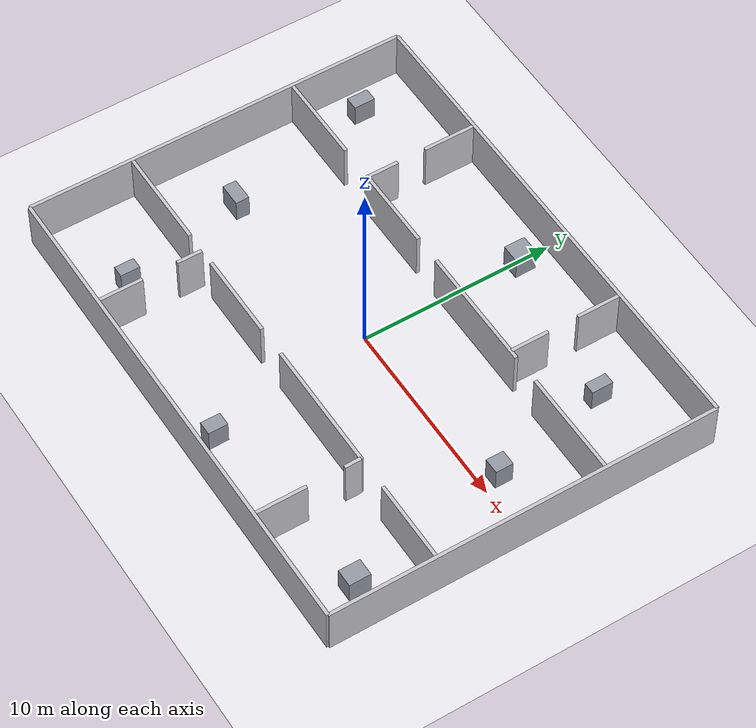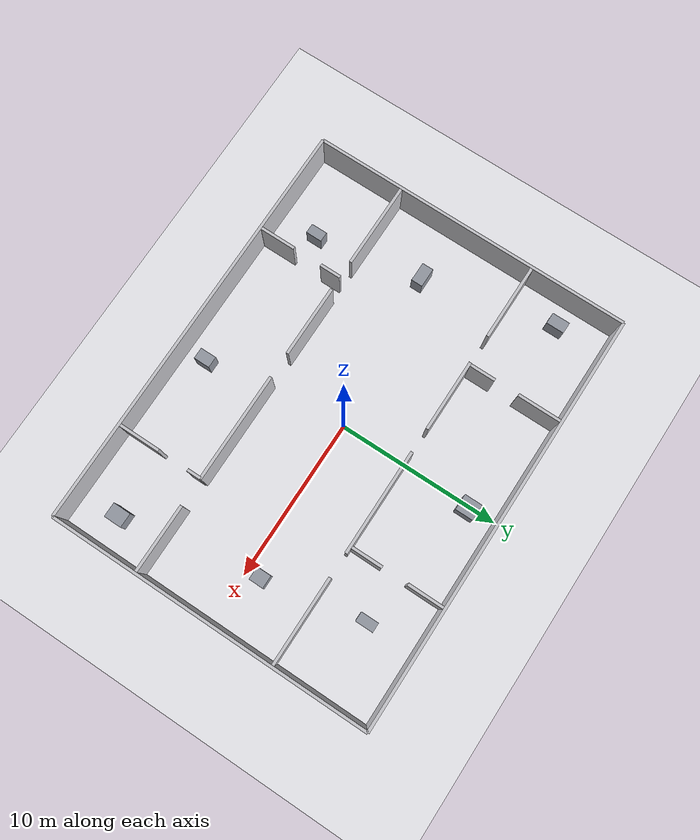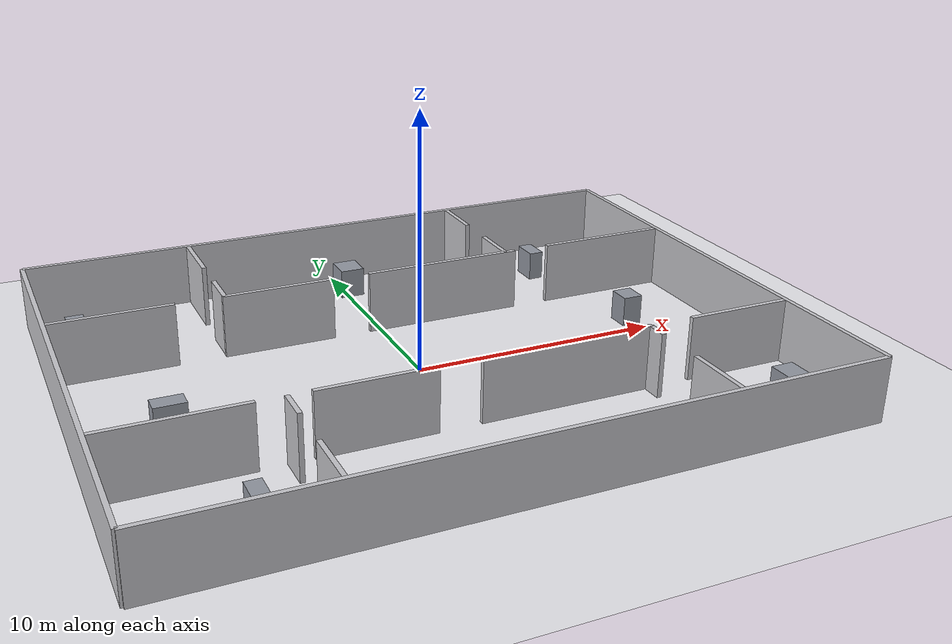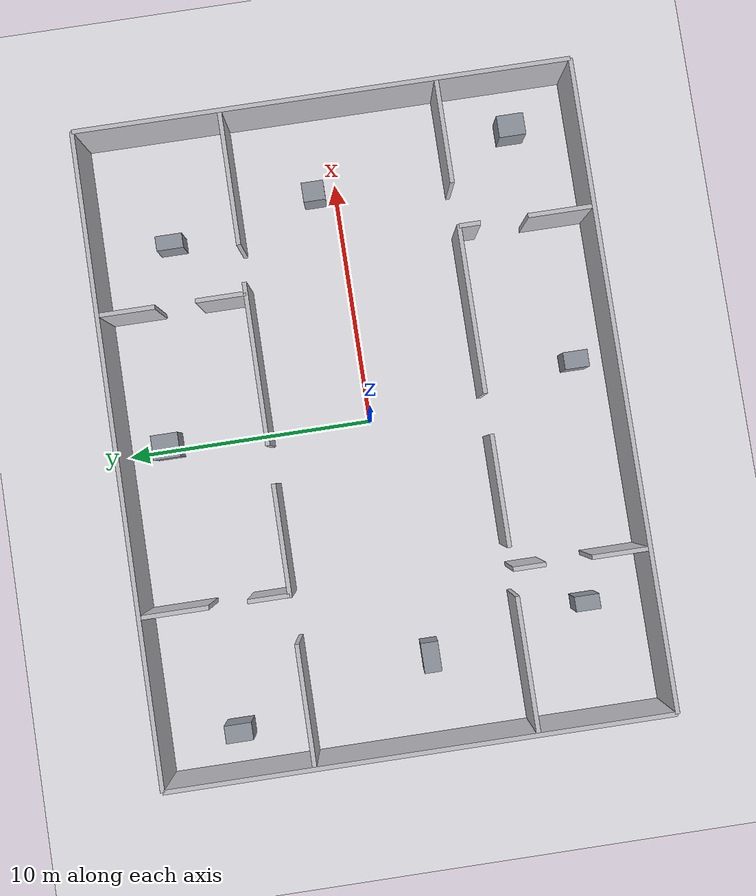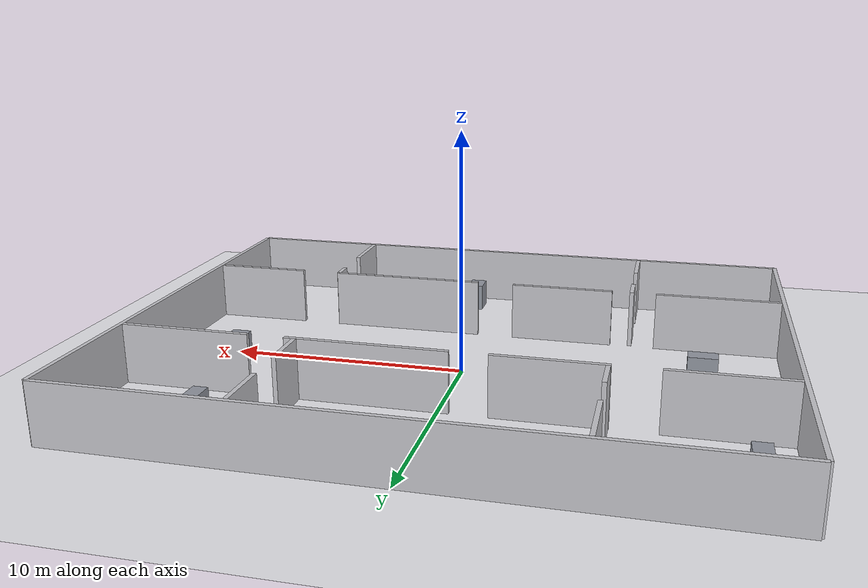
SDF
<?xml version="1.0"?>
<sdf version="1.9"><world name="new_room_world">
<plugin filename="gz-sim-physics-system" name="gz::sim::systems::Physics"/><plugin filename="gz-sim-user-commands-system" name="gz::sim::systems::UserCommands"/><plugin filename="gz-sim-scene-broadcaster-system" name="gz::sim::systems::SceneBroadcaster"/><plugin filename="gz-sim-sensors-system" name="gz::sim::systems::Sensors"><render_engine>ogre2</render_engine></plugin><plugin filename="gz-sim-imu-system" name="gz::sim::systems::Imu"/>
<physics name="new_room_realtime" type="ignored"><max_step_size>0.001</max_step_size><real_time_factor>1</real_time_factor></physics><gravity>0 0 -9.8</gravity><scene><ambient>0.85 0.85 0.87 1</ambient><background>0.68 0.68 0.71 1</background><shadows>false</shadows></scene><light name="sun" type="directional"><cast_shadows>false</cast_shadows><pose>0 0 10 0 0 0</pose><diffuse>0.95 0.95 0.95 1</diffuse><direction>-0.3 0.2 -1</direction></light>
<model name="new_room_ground"><static>true</static><link name="ground_link"><collision name="ground_collision"><geometry><plane><normal>0 0 1</normal><size>40 32</size></plane></geometry></collision><visual name="ground_visual"><geometry><plane><normal>0 0 1</normal><size>40 32</size></plane></geometry><material><ambient>0.92 0.92 0.94 1</ambient><diffuse>0.92 0.92 0.94 1</diffuse></material></visual></link></model>
<model name="mini_hospital_structure"><static>true</static><link name="structure">
<collision name="mx048_c000"><pose>0 10 1.25 0 0 0</pose><geometry><box><size>26 0.18 2.5</size></box></geometry></collision><visual name="mx048_v000"><pose>0 10 1.25 0 0 0</pose><geometry><box><size>26 0.18 2.5</size></box></geometry><material><ambient>0.78 0.78 0.80 1</ambient><diffuse>0.78 0.78 0.80 1</diffuse></material></visual>
<collision name="mx048_c001"><pose>0 -10 1.25 0 0 0</pose><geometry><box><size>26 0.18 2.5</size></box></geometry></collision><visual name="mx048_v001"><pose>0 -10 1.25 0 0 0</pose><geometry><box><size>26 0.18 2.5</size></box></geometry><material><ambient>0.78 0.78 0.80 1</ambient><diffuse>0.78 0.78 0.80 1</diffuse></material></visual>
<collision name="mx048_c002"><pose>-13 0 1.25 0 0 0</pose><geometry><box><size>0.18 20 2.5</size></box></geometry></collision><visual name="mx048_v002"><pose>-13 0 1.25 0 0 0</pose><geometry><box><size>0.18 20 2.5</size></box></geometry><material><ambient>0.78 0.78 0.80 1</ambient><diffuse>0.78 0.78 0.80 1</diffuse></material></visual>
<collision name="mx048_c003"><pose>13 0 1.25 0 0 0</pose><geometry><box><size>0.18 20 2.5</size></box></geometry></collision><visual name="mx048_v003"><pose>13 0 1.25 0 0 0</pose><geometry><box><size>0.18 20 2.5</size></box></geometry><material><ambient>0.78 0.78 0.80 1</ambient><diffuse>0.78 0.78 0.80 1</diffuse></material></visual>
<collision name="mx048_c004"><pose>-10.555 4.1 1.25 0 0 0</pose><geometry><box><size>4.71 0.18 2.5</size></box></geometry></collision><visual name="mx048_v004"><pose>-10.555 4.1 1.25 0 0 0</pose><geometry><box><size>4.71 0.18 2.5</size></box></geometry><material><ambient>0.78 0.78 0.80 1</ambient><diffuse>0.78 0.78 0.80 1</diffuse></material></visual>
<collision name="mx048_c005"><pose>-4.175 4.1 1.25 0 0 0</pose><geometry><box><size>4.45 0.18 2.5</size></box></geometry></collision><visual name="mx048_v005"><pose>-4.175 4.1 1.25 0 0 0</pose><geometry><box><size>4.45 0.18 2.5</size></box></geometry><material><ambient>0.78 0.78 0.80 1</ambient><diffuse>0.78 0.78 0.80 1</diffuse></material></visual>
<collision name="mx048_c006"><pose>2.8 4.1 1.25 0 0 0</pose><geometry><box><size>6.5 0.18 2.5</size></box></geometry></collision><visual name="mx048_v006"><pose>2.8 4.1 1.25 0 0 0</pose><geometry><box><size>6.5 0.18 2.5</size></box></geometry><material><ambient>0.78 0.78 0.80 1</ambient><diffuse>0.78 0.78 0.80 1</diffuse></material></visual>
<collision name="mx048_c007"><pose>10.23 4.1 1.25 0 0 0</pose><geometry><box><size>5.36 0.18 2.5</size></box></geometry></collision><visual name="mx048_v007"><pose>10.23 4.1 1.25 0 0 0</pose><geometry><box><size>5.36 0.18 2.5</size></box></geometry><material><ambient>0.78 0.78 0.80 1</ambient><diffuse>0.78 0.78 0.80 1</diffuse></material></visual>
<collision name="mx048_c008"><pose>-10.28 -4.6 1.25 0 0 0</pose><geometry><box><size>5.26 0.18 2.5</size></box></geometry></collision><visual name="mx048_v008"><pose>-10.28 -4.6 1.25 0 0 0</pose><geometry><box><size>5.26 0.18 2.5</size></box></geometry><material><ambient>0.78 0.78 0.80 1</ambient><diffuse>0.78 0.78 0.80 1</diffuse></material></visual>
<collision name="mx048_c009"><pose>-3.525 -4.6 1.25 0 0 0</pose><geometry><box><size>4.45 0.18 2.5</size></box></geometry></collision><visual name="mx048_v009"><pose>-3.525 -4.6 1.25 0 0 0</pose><geometry><box><size>4.45 0.18 2.5</size></box></geometry><material><ambient>0.78 0.78 0.80 1</ambient><diffuse>0.78 0.78 0.80 1</diffuse></material></visual>
<collision name="mx048_c010"><pose>3.675 -4.6 1.25 0 0 0</pose><geometry><box><size>6.75 0.18 2.5</size></box></geometry></collision><visual name="mx048_v010"><pose>3.675 -4.6 1.25 0 0 0</pose><geometry><box><size>6.75 0.18 2.5</size></box></geometry><material><ambient>0.78 0.78 0.80 1</ambient><diffuse>0.78 0.78 0.80 1</diffuse></material></visual>
<collision name="mx048_c011"><pose>10.83 -4.6 1.25 0 0 0</pose><geometry><box><size>4.16 0.18 2.5</size></box></geometry></collision><visual name="mx048_v011"><pose>10.83 -4.6 1.25 0 0 0</pose><geometry><box><size>4.16 0.18 2.5</size></box></geometry><material><ambient>0.78 0.78 0.80 1</ambient><diffuse>0.78 0.78 0.80 1</diffuse></material></visual>
<collision name="mx048_c012"><pose>-6.3 4.925 1.25 0 0 0</pose><geometry><box><size>0.18 1.65 2.5</size></box></geometry></collision><visual name="mx048_v012"><pose>-6.3 4.925 1.25 0 0 0</pose><geometry><box><size>0.18 1.65 2.5</size></box></geometry><material><ambient>0.78 0.78 0.80 1</ambient><diffuse>0.78 0.78 0.80 1</diffuse></material></visual>
<collision name="mx048_c013"><pose>-6.3 8.58 1.25 0 0 0</pose><geometry><box><size>0.18 2.66 2.5</size></box></geometry></collision><visual name="mx048_v013"><pose>-6.3 8.58 1.25 0 0 0</pose><geometry><box><size>0.18 2.66 2.5</size></box></geometry><material><ambient>0.78 0.78 0.80 1</ambient><diffuse>0.78 0.78 0.80 1</diffuse></material></visual>
<collision name="mx048_c014"><pose>5.6 5.1 1.25 0 0 0</pose><geometry><box><size>0.18 2 2.5</size></box></geometry></collision><visual name="mx048_v014"><pose>5.6 5.1 1.25 0 0 0</pose><geometry><box><size>0.18 2 2.5</size></box></geometry><material><ambient>0.78 0.78 0.80 1</ambient><diffuse>0.78 0.78 0.80 1</diffuse></material></visual>
<collision name="mx048_c015"><pose>5.6 8.805 1.25 0 0 0</pose><geometry><box><size>0.18 2.21 2.5</size></box></geometry></collision><visual name="mx048_v015"><pose>5.6 8.805 1.25 0 0 0</pose><geometry><box><size>0.18 2.21 2.5</size></box></geometry><material><ambient>0.78 0.78 0.80 1</ambient><diffuse>0.78 0.78 0.80 1</diffuse></material></visual>
<collision name="mx048_c016"><pose>-6.6 -8.805 1.25 0 0 0</pose><geometry><box><size>0.18 2.21 2.5</size></box></geometry></collision><visual name="mx048_v016"><pose>-6.6 -8.805 1.25 0 0 0</pose><geometry><box><size>0.18 2.21 2.5</size></box></geometry><material><ambient>0.78 0.78 0.80 1</ambient><diffuse>0.78 0.78 0.80 1</diffuse></material></visual>
<collision name="mx048_c017"><pose>-6.6 -5.25 1.25 0 0 0</pose><geometry><box><size>0.18 1.3 2.5</size></box></geometry></collision><visual name="mx048_v017"><pose>-6.6 -5.25 1.25 0 0 0</pose><geometry><box><size>0.18 1.3 2.5</size></box></geometry><material><ambient>0.78 0.78 0.80 1</ambient><diffuse>0.78 0.78 0.80 1</diffuse></material></visual>
<collision name="mx048_c018"><pose>7 -8.63 1.25 0 0 0</pose><geometry><box><size>0.18 2.56 2.5</size></box></geometry></collision><visual name="mx048_v018"><pose>7 -8.63 1.25 0 0 0</pose><geometry><box><size>0.18 2.56 2.5</size></box></geometry><material><ambient>0.78 0.78 0.80 1</ambient><diffuse>0.78 0.78 0.80 1</diffuse></material></visual>
<collision name="mx048_c019"><pose>7 -5.025 1.25 0 0 0</pose><geometry><box><size>0.18 0.85 2.5</size></box></geometry></collision><visual name="mx048_v019"><pose>7 -5.025 1.25 0 0 0</pose><geometry><box><size>0.18 0.85 2.5</size></box></geometry><material><ambient>0.78 0.78 0.80 1</ambient><diffuse>0.78 0.78 0.80 1</diffuse></material></visual>
<collision name="mx048_c020"><pose>-11.5 7 0.6 0 0 0</pose><geometry><box><size>0.7 1.1 1.2</size></box></geometry></collision><visual name="mx048_v020"><pose>-11.5 7 0.6 0 0 0</pose><geometry><box><size>0.7 1.1 1.2</size></box></geometry><material><ambient>0.58 0.60 0.64 1</ambient><diffuse>0.58 0.60 0.64 1</diffuse></material></visual>
<collision name="mx048_c021"><pose>0.2 8.3 0.6 0 0 0</pose><geometry><box><size>1 1.1 1.2</size></box></geometry></collision><visual name="mx048_v021"><pose>0.2 8.3 0.6 0 0 0</pose><geometry><box><size>1 1.1 1.2</size></box></geometry><material><ambient>0.58 0.60 0.64 1</ambient><diffuse>0.58 0.60 0.64 1</diffuse></material></visual>
<collision name="mx048_c022"><pose>8.4 7 0.6 0 0 0</pose><geometry><box><size>0.6 1.1 1.2</size></box></geometry></collision><visual name="mx048_v022"><pose>8.4 7 0.6 0 0 0</pose><geometry><box><size>0.6 1.1 1.2</size></box></geometry><material><ambient>0.58 0.60 0.64 1</ambient><diffuse>0.58 0.60 0.64 1</diffuse></material></visual>
<collision name="mx048_c023"><pose>-8.5 -7.5 0.6 0 0 0</pose><geometry><box><size>0.6 1 1.2</size></box></geometry></collision><visual name="mx048_v023"><pose>-8.5 -7.5 0.6 0 0 0</pose><geometry><box><size>0.6 1 1.2</size></box></geometry><material><ambient>0.58 0.60 0.64 1</ambient><diffuse>0.58 0.60 0.64 1</diffuse></material></visual>
<collision name="mx048_c024"><pose>1.2 -8.6 0.6 0 0 0</pose><geometry><box><size>0.7 1 1.2</size></box></geometry></collision><visual name="mx048_v024"><pose>1.2 -8.6 0.6 0 0 0</pose><geometry><box><size>0.7 1 1.2</size></box></geometry><material><ambient>0.58 0.60 0.64 1</ambient><diffuse>0.58 0.60 0.64 1</diffuse></material></visual>
<collision name="mx048_c025"><pose>11.1 -7.5 0.6 0 0 0</pose><geometry><box><size>0.9 1.1 1.2</size></box></geometry></collision><visual name="mx048_v025"><pose>11.1 -7.5 0.6 0 0 0</pose><geometry><box><size>0.9 1.1 1.2</size></box></geometry><material><ambient>0.58 0.60 0.64 1</ambient><diffuse>0.58 0.60 0.64 1</diffuse></material></visual>
<collision name="mx048_c026"><pose>-9.7 -1 0.6 0 0 0</pose><geometry><box><size>1.2 0.7 1.2</size></box></geometry></collision><visual name="mx048_v026"><pose>-9.7 -1 0.6 0 0 0</pose><geometry><box><size>1.2 0.7 1.2</size></box></geometry><material><ambient>0.58 0.60 0.64 1</ambient><diffuse>0.58 0.60 0.64 1</diffuse></material></visual>
<collision name="mx048_c027"><pose>9.6 0.9 0.6 0 0 0</pose><geometry><box><size>0.8 0.9 1.2</size></box></geometry></collision><visual name="mx048_v027"><pose>9.6 0.9 0.6 0 0 0</pose><geometry><box><size>0.8 0.9 1.2</size></box></geometry><material><ambient>0.58 0.60 0.64 1</ambient><diffuse>0.58 0.60 0.64 1</diffuse></material></visual>
</link></model></world></sdf>
